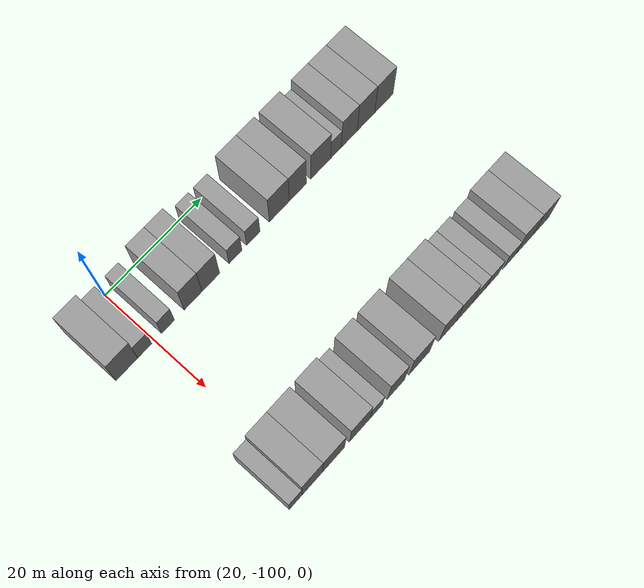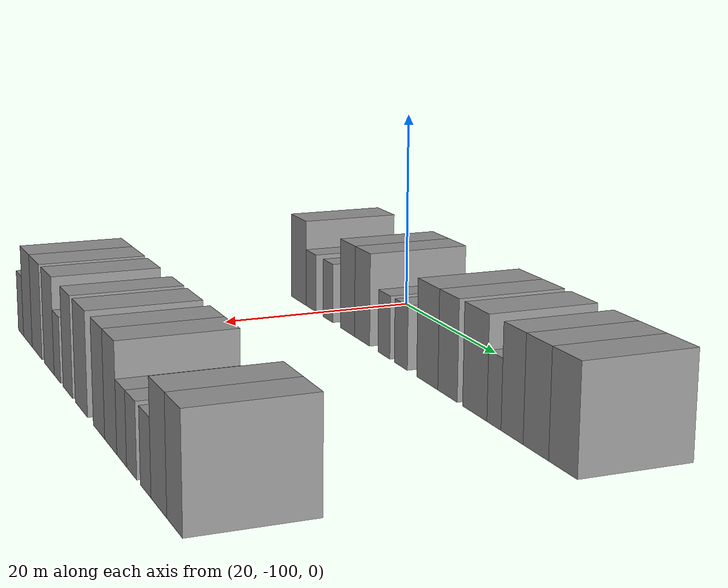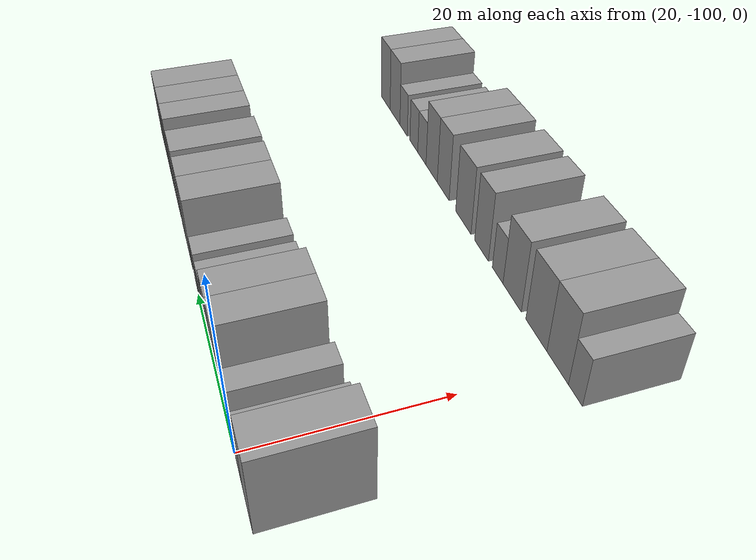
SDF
<sdf version="1.6">
 <world name="default">
  <model name="building_32">
   <static>1</static>
   <pose>25.0000 -105.5855 0 0.000000 0.000000 0.000000</pose>
   <link name="link">
    <pose>0 0 4.50 0 0 0</pose>
    <collision name="collision"><geometry><box><size>10.0000 4.3590 9.0000</size></box></geometry></collision>
    <visual name="visual">
     <cast_shadows>0</cast_shadows>
     <geometry><box><size>10.0000 4.3590 9.0000</size></box></geometry>
     <material>
      <script>
       <uri>model://grey_wall/materials/scripts</uri>
       <uri>model://grey_wall/materials/textures</uri>
       <name>vrc/grey_wall</name>
      </script>
     </material>
    </visual>
   </link>
  </model>
  <model name="building_33">
   <static>1</static>
   <pose>25.0000 -101.9977 0 0.000000 0.000000 0.000000</pose>
   <link name="link">
    <pose>0 0 3.00 0 0 0</pose>
    <collision name="collision"><geometry><box><size>10.0000 2.8165 6.0000</size></box></geometry></collision>
    <visual name="visual">
     <cast_shadows>0</cast_shadows>
     <geometry><box><size>10.0000 2.8165 6.0000</size></box></geometry>
     <material>
      <script>
       <uri>model://grey_wall/materials/scripts</uri>
       <uri>model://grey_wall/materials/textures</uri>
       <name>vrc/grey_wall</name>
      </script>
     </material>
    </visual>
   </link>
  </model>
  <model name="building_34">
   <static>1</static>
   <pose>25.0000 -97.2741 0 0.000000 0.000000 0.000000</pose>
   <link name="link">
    <pose>0 0 3.00 0 0 0</pose>
    <collision name="collision"><geometry><box><size>10.0000 2.6306 6.0000</size></box></geometry></collision>
    <visual name="visual">
     <cast_shadows>0</cast_shadows>
     <geometry><box><size>10.0000 2.6306 6.0000</size></box></geometry>
     <material>
      <script>
       <uri>model://grey_wall/materials/scripts</uri>
       <uri>model://grey_wall/materials/textures</uri>
       <name>vrc/grey_wall</name>
      </script>
     </material>
    </visual>
   </link>
  </model>
  <model name="building_35">
   <static>1</static>
   <pose>25.0000 -92.1149 0 0.000000 0.000000 0.000000</pose>
   <link name="link">
    <pose>0 0 4.50 0 0 0</pose>
    <collision name="collision"><geometry><box><size>10.0000 3.6878 9.0000</size></box></geometry></collision>
    <visual name="visual">
     <cast_shadows>0</cast_shadows>
     <geometry><box><size>10.0000 3.6878 9.0000</size></box></geometry>
     <material>
      <script>
       <uri>model://grey_wall/materials/scripts</uri>
       <uri>model://grey_wall/materials/textures</uri>
       <name>vrc/grey_wall</name>
      </script>
     </material>
    </visual>
   </link>
  </model>
  <model name="building_36">
   <static>1</static>
   <pose>25.0000 -88.4303 0 0.000000 0.000000 0.000000</pose>
   <link name="link">
    <pose>0 0 4.50 0 0 0</pose>
    <collision name="collision"><geometry><box><size>10.0000 3.6813 9.0000</size></box></geometry></collision>
    <visual name="visual">
     <cast_shadows>0</cast_shadows>
     <geometry><box><size>10.0000 3.6813 9.0000</size></box></geometry>
     <material>
      <script>
       <uri>model://grey_wall/materials/scripts</uri>
       <uri>model://grey_wall/materials/textures</uri>
       <name>vrc/grey_wall</name>
      </script>
     </material>
    </visual>
   </link>
  </model>
  <model name="building_37">
   <static>1</static>
   <pose>25.0000 -83.2253 0 0.000000 0.000000 0.000000</pose>
   <link name="link">
    <pose>0 0 3.00 0 0 0</pose>
    <collision name="collision"><geometry><box><size>10.0000 2.7287 6.0000</size></box></geometry></collision>
    <visual name="visual">
     <cast_shadows>0</cast_shadows>
     <geometry><box><size>10.0000 2.7287 6.0000</size></box></geometry>
     <material>
      <script>
       <uri>model://grey_wall/materials/scripts</uri>
       <uri>model://grey_wall/materials/textures</uri>
       <name>vrc/grey_wall</name>
      </script>
     </material>
    </visual>
   </link>
  </model>
  <model name="building_38">
   <static>1</static>
   <pose>25.0000 -79.4292 0 0.000000 0.000000 0.000000</pose>
   <link name="link">
    <pose>0 0 3.00 0 0 0</pose>
    <collision name="collision"><geometry><box><size>10.0000 2.8636 6.0000</size></box></geometry></collision>
    <visual name="visual">
     <cast_shadows>0</cast_shadows>
     <geometry><box><size>10.0000 2.8636 6.0000</size></box></geometry>
     <material>
      <script>
       <uri>model://grey_wall/materials/scripts</uri>
       <uri>model://grey_wall/materials/textures</uri>
       <name>vrc/grey_wall</name>
      </script>
     </material>
    </visual>
   </link>
  </model>
  <model name="building_39">
   <static>1</static>
   <pose>25.0000 -73.8341 0 0.000000 0.000000 0.000000</pose>
   <link name="link">
    <pose>0 0 4.50 0 0 0</pose>
    <collision name="collision"><geometry><box><size>10.0000 4.3264 9.0000</size></box></geometry></collision>
    <visual name="visual">
     <cast_shadows>0</cast_shadows>
     <geometry><box><size>10.0000 4.3264 9.0000</size></box></geometry>
     <material>
      <script>
       <uri>model://grey_wall/materials/scripts</uri>
       <uri>model://grey_wall/materials/textures</uri>
       <name>vrc/grey_wall</name>
      </script>
     </material>
    </visual>
   </link>
  </model>
  <model name="building_40">
   <static>1</static>
   <pose>25.0000 -69.7918 0 0.000000 0.000000 0.000000</pose>
   <link name="link">
    <pose>0 0 4.50 0 0 0</pose>
    <collision name="collision"><geometry><box><size>10.0000 3.7582 9.0000</size></box></geometry></collision>
    <visual name="visual">
     <cast_shadows>0</cast_shadows>
     <geometry><box><size>10.0000 3.7582 9.0000</size></box></geometry>
     <material>
      <script>
       <uri>model://grey_wall/materials/scripts</uri>
       <uri>model://grey_wall/materials/textures</uri>
       <name>vrc/grey_wall</name>
      </script>
     </material>
    </visual>
   </link>
  </model>
  <model name="building_41">
   <static>1</static>
   <pose>25.0000 -64.7160 0 0.000000 0.000000 0.000000</pose>
   <link name="link">
    <pose>0 0 4.50 0 0 0</pose>
    <collision name="collision"><geometry><box><size>10.0000 4.3934 9.0000</size></box></geometry></collision>
    <visual name="visual">
     <cast_shadows>0</cast_shadows>
     <geometry><box><size>10.0000 4.3934 9.0000</size></box></geometry>
     <material>
      <script>
       <uri>model://grey_wall/materials/scripts</uri>
       <uri>model://grey_wall/materials/textures</uri>
       <name>vrc/grey_wall</name>
      </script>
     </material>
    </visual>
   </link>
  </model>
  <model name="building_42">
   <static>1</static>
   <pose>25.0000 -61.3032 0 0.000000 0.000000 0.000000</pose>
   <link name="link">
    <pose>0 0 3.00 0 0 0</pose>
    <collision name="collision"><geometry><box><size>10.0000 2.4321 6.0000</size></box></geometry></collision>
    <visual name="visual">
     <cast_shadows>0</cast_shadows>
     <geometry><box><size>10.0000 2.4321 6.0000</size></box></geometry>
     <material>
      <script>
       <uri>model://grey_wall/materials/scripts</uri>
       <uri>model://grey_wall/materials/textures</uri>
       <name>vrc/grey_wall</name>
      </script>
     </material>
    </visual>
   </link>
  </model>
  <model name="building_43">
   <static>1</static>
   <pose>25.0000 -58.2688 0 0.000000 0.000000 0.000000</pose>
   <link name="link">
    <pose>0 0 4.50 0 0 0</pose>
    <collision name="collision"><geometry><box><size>10.0000 3.6367 9.0000</size></box></geometry></collision>
    <visual name="visual">
     <cast_shadows>0</cast_shadows>
     <geometry><box><size>10.0000 3.6367 9.0000</size></box></geometry>
     <material>
      <script>
       <uri>model://grey_wall/materials/scripts</uri>
       <uri>model://grey_wall/materials/textures</uri>
       <name>vrc/grey_wall</name>
      </script>
     </material>
    </visual>
   </link>
  </model>
  <model name="building_44">
   <static>1</static>
   <pose>25.0000 -54.4669 0 0.000000 0.000000 0.000000</pose>
   <link name="link">
    <pose>0 0 4.50 0 0 0</pose>
    <collision name="collision"><geometry><box><size>10.0000 3.9671 9.0000</size></box></geometry></collision>
    <visual name="visual">
     <cast_shadows>0</cast_shadows>
     <geometry><box><size>10.0000 3.9671 9.0000</size></box></geometry>
     <material>
      <script>
       <uri>model://grey_wall/materials/scripts</uri>
       <uri>model://grey_wall/materials/textures</uri>
       <name>vrc/grey_wall</name>
      </script>
     </material>
    </visual>
   </link>
  </model>
  <model name="building_45">
   <static>1</static>
   <pose>25.0000 -50.3726 0 0.000000 0.000000 0.000000</pose>
   <link name="link">
    <pose>0 0 4.50 0 0 0</pose>
    <collision name="collision"><geometry><box><size>10.0000 4.2215 9.0000</size></box></geometry></collision>
    <visual name="visual">
     <cast_shadows>0</cast_shadows>
     <geometry><box><size>10.0000 4.2215 9.0000</size></box></geometry>
     <material>
      <script>
       <uri>model://grey_wall/materials/scripts</uri>
       <uri>model://grey_wall/materials/textures</uri>
       <name>vrc/grey_wall</name>
      </script>
     </material>
    </visual>
   </link>
  </model>
  <model name="building_142">
   <static>1</static>
   <pose>55.0000 -103.3333 0 0.000000 0.000000 0.000000</pose>
   <link name="link">
    <pose>0 0 3.00 0 0 0</pose>
    <collision name="collision"><geometry><box><size>10.0000 2.5754 6.0000</size></box></geometry></collision>
    <visual name="visual">
     <cast_shadows>0</cast_shadows>
     <geometry><box><size>10.0000 2.5754 6.0000</size></box></geometry>
     <material>
      <script>
       <uri>model://grey_wall/materials/scripts</uri>
       <uri>model://grey_wall/materials/textures</uri>
       <name>vrc/grey_wall</name>
      </script>
     </material>
    </visual>
   </link>
  </model>
  <model name="building_143">
   <static>1</static>
   <pose>55.0000 -99.9384 0 0.000000 0.000000 0.000000</pose>
   <link name="link">
    <pose>0 0 4.50 0 0 0</pose>
    <collision name="collision"><geometry><box><size>10.0000 4.2144 9.0000</size></box></geometry></collision>
    <visual name="visual">
     <cast_shadows>0</cast_shadows>
     <geometry><box><size>10.0000 4.2144 9.0000</size></box></geometry>
     <material>
      <script>
       <uri>model://grey_wall/materials/scripts</uri>
       <uri>model://grey_wall/materials/textures</uri>
       <name>vrc/grey_wall</name>
      </script>
     </material>
    </visual>
   </link>
  </model>
  <model name="building_144">
   <static>1</static>
   <pose>55.0000 -95.5860 0 0.000000 0.000000 0.000000</pose>
   <link name="link">
    <pose>0 0 4.50 0 0 0</pose>
    <collision name="collision"><geometry><box><size>10.0000 4.4905 9.0000</size></box></geometry></collision>
    <visual name="visual">
     <cast_shadows>0</cast_shadows>
     <geometry><box><size>10.0000 4.4905 9.0000</size></box></geometry>
     <material>
      <script>
       <uri>model://grey_wall/materials/scripts</uri>
       <uri>model://grey_wall/materials/textures</uri>
       <name>vrc/grey_wall</name>
      </script>
     </material>
    </visual>
   </link>
  </model>
  <model name="building_145">
   <static>1</static>
   <pose>55.0000 -90.1877 0 0.000000 0.000000 0.000000</pose>
   <link name="link">
    <pose>0 0 4.50 0 0 0</pose>
    <collision name="collision"><geometry><box><size>10.0000 4.3060 9.0000</size></box></geometry></collision>
    <visual name="visual">
     <cast_shadows>0</cast_shadows>
     <geometry><box><size>10.0000 4.3060 9.0000</size></box></geometry>
     <material>
      <script>
       <uri>model://grey_wall/materials/scripts</uri>
       <uri>model://grey_wall/materials/textures</uri>
       <name>vrc/grey_wall</name>
      </script>
     </material>
    </visual>
   </link>
  </model>
  <model name="building_146">
   <static>1</static>
   <pose>55.0000 -86.7013 0 0.000000 0.000000 0.000000</pose>
   <link name="link">
    <pose>0 0 3.00 0 0 0</pose>
    <collision name="collision"><geometry><box><size>10.0000 2.6667 6.0000</size></box></geometry></collision>
    <visual name="visual">
     <cast_shadows>0</cast_shadows>
     <geometry><box><size>10.0000 2.6667 6.0000</size></box></geometry>
     <material>
      <script>
       <uri>model://grey_wall/materials/scripts</uri>
       <uri>model://grey_wall/materials/textures</uri>
       <name>vrc/grey_wall</name>
      </script>
     </material>
    </visual>
   </link>
  </model>
  <model name="building_147">
   <static>1</static>
   <pose>55.0000 -82.5218 0 0.000000 0.000000 0.000000</pose>
   <link name="link">
    <pose>0 0 4.50 0 0 0</pose>
    <collision name="collision"><geometry><box><size>10.0000 3.6924 9.0000</size></box></geometry></collision>
    <visual name="visual">
     <cast_shadows>0</cast_shadows>
     <geometry><box><size>10.0000 3.6924 9.0000</size></box></geometry>
     <material>
      <script>
       <uri>model://grey_wall/materials/scripts</uri>
       <uri>model://grey_wall/materials/textures</uri>
       <name>vrc/grey_wall</name>
      </script>
     </material>
    </visual>
   </link>
  </model>
  <model name="building_148">
   <static>1</static>
   <pose>55.0000 -77.4430 0 0.000000 0.000000 0.000000</pose>
   <link name="link">
    <pose>0 0 4.50 0 0 0</pose>
    <collision name="collision"><geometry><box><size>10.0000 4.4650 9.0000</size></box></geometry></collision>
    <visual name="visual">
     <cast_shadows>0</cast_shadows>
     <geometry><box><size>10.0000 4.4650 9.0000</size></box></geometry>
     <material>
      <script>
       <uri>model://grey_wall/materials/scripts</uri>
       <uri>model://grey_wall/materials/textures</uri>
       <name>vrc/grey_wall</name>
      </script>
     </material>
    </visual>
   </link>
  </model>
  <model name="building_149">
   <static>1</static>
   <pose>55.0000 -71.3086 0 0.000000 0.000000 0.000000</pose>
   <link name="link">
    <pose>0 0 4.50 0 0 0</pose>
    <collision name="collision"><geometry><box><size>10.0000 3.8039 9.0000</size></box></geometry></collision>
    <visual name="visual">
     <cast_shadows>0</cast_shadows>
     <geometry><box><size>10.0000 3.8039 9.0000</size></box></geometry>
     <material>
      <script>
       <uri>model://grey_wall/materials/scripts</uri>
       <uri>model://grey_wall/materials/textures</uri>
       <name>vrc/grey_wall</name>
      </script>
     </material>
    </visual>
   </link>
  </model>
  <model name="building_150">
   <static>1</static>
   <pose>55.0000 -67.5013 0 0.000000 0.000000 0.000000</pose>
   <link name="link">
    <pose>0 0 4.50 0 0 0</pose>
    <collision name="collision"><geometry><box><size>10.0000 3.8107 9.0000</size></box></geometry></collision>
    <visual name="visual">
     <cast_shadows>0</cast_shadows>
     <geometry><box><size>10.0000 3.8107 9.0000</size></box></geometry>
     <material>
      <script>
       <uri>model://grey_wall/materials/scripts</uri>
       <uri>model://grey_wall/materials/textures</uri>
       <name>vrc/grey_wall</name>
      </script>
     </material>
    </visual>
   </link>
  </model>
  <model name="building_151">
   <static>1</static>
   <pose>55.0000 -64.1379 0 0.000000 0.000000 0.000000</pose>
   <link name="link">
    <pose>0 0 3.00 0 0 0</pose>
    <collision name="collision"><geometry><box><size>10.0000 2.9160 6.0000</size></box></geometry></collision>
    <visual name="visual">
     <cast_shadows>0</cast_shadows>
     <geometry><box><size>10.0000 2.9160 6.0000</size></box></geometry>
     <material>
      <script>
       <uri>model://grey_wall/materials/scripts</uri>
       <uri>model://grey_wall/materials/textures</uri>
       <name>vrc/grey_wall</name>
      </script>
     </material>
    </visual>
   </link>
  </model>
  <model name="building_152">
   <static>1</static>
   <pose>55.0000 -61.2200 0 0.000000 0.000000 0.000000</pose>
   <link name="link">
    <pose>0 0 3.00 0 0 0</pose>
    <collision name="collision"><geometry><box><size>10.0000 2.9199 6.0000</size></box></geometry></collision>
    <visual name="visual">
     <cast_shadows>0</cast_shadows>
     <geometry><box><size>10.0000 2.9199 6.0000</size></box></geometry>
     <material>
      <script>
       <uri>model://grey_wall/materials/scripts</uri>
       <uri>model://grey_wall/materials/textures</uri>
       <name>vrc/grey_wall</name>
      </script>
     </material>
    </visual>
   </link>
  </model>
  <model name="building_153">
   <static>1</static>
   <pose>55.0000 -57.3246 0 0.000000 0.000000 0.000000</pose>
   <link name="link">
    <pose>0 0 3.00 0 0 0</pose>
    <collision name="collision"><geometry><box><size>10.0000 2.8708 6.0000</size></box></geometry></collision>
    <visual name="visual">
     <cast_shadows>0</cast_shadows>
     <geometry><box><size>10.0000 2.8708 6.0000</size></box></geometry>
     <material>
      <script>
       <uri>model://grey_wall/materials/scripts</uri>
       <uri>model://grey_wall/materials/textures</uri>
       <name>vrc/grey_wall</name>
      </script>
     </material>
    </visual>
   </link>
  </model>
  <model name="building_154">
   <static>1</static>
   <pose>55.0000 -53.8946 0 0.000000 0.000000 0.000000</pose>
   <link name="link">
    <pose>0 0 4.50 0 0 0</pose>
    <collision name="collision"><geometry><box><size>10.0000 3.9892 9.0000</size></box></geometry></collision>
    <visual name="visual">
     <cast_shadows>0</cast_shadows>
     <geometry><box><size>10.0000 3.9892 9.0000</size></box></geometry>
     <material>
      <script>
       <uri>model://grey_wall/materials/scripts</uri>
       <uri>model://grey_wall/materials/textures</uri>
       <name>vrc/grey_wall</name>
      </script>
     </material>
    </visual>
   </link>
  </model>
  <model name="building_155">
   <static>1</static>
   <pose>55.0000 -50.0139 0 0.000000 0.000000 0.000000</pose>
   <link name="link">
    <pose>0 0 4.50 0 0 0</pose>
    <collision name="collision"><geometry><box><size>10.0000 3.7723 9.0000</size></box></geometry></collision>
    <visual name="visual">
     <cast_shadows>0</cast_shadows>
     <geometry><box><size>10.0000 3.7723 9.0000</size></box></geometry>
     <material>
      <script>
       <uri>model://grey_wall/materials/scripts</uri>
       <uri>model://grey_wall/materials/textures</uri>
       <name>vrc/grey_wall</name>
      </script>
     </material>
    </visual>
   </link>
  </model>
 </world>
</sdf>
